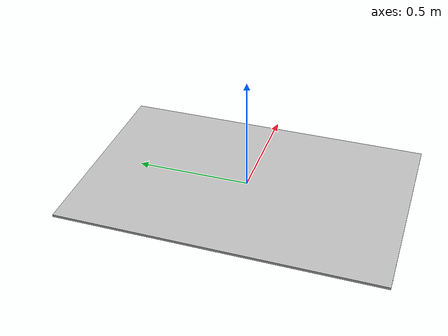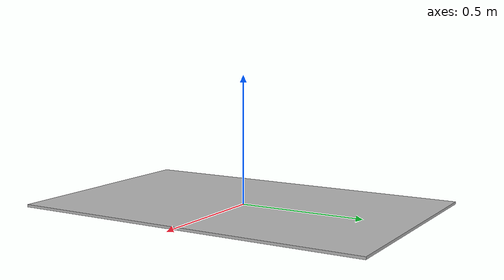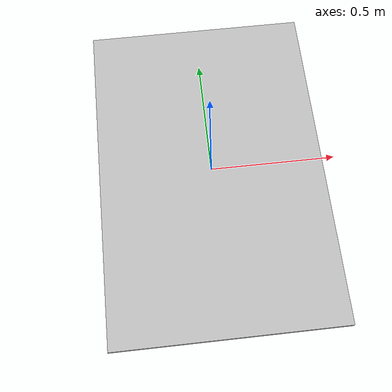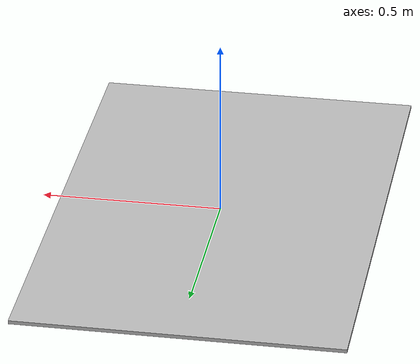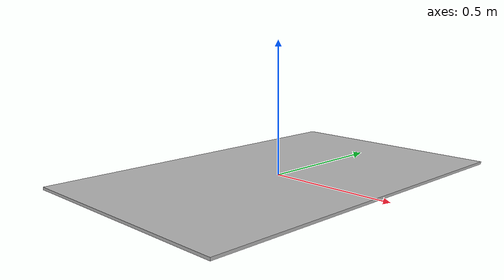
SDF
<?xml version='1.0'?>
<sdf version='1.7'>
  <model name='plate_9'>
    <link name='link_2'>
      <gravity>1</gravity>
      <visual name='visual'>
        <pose>0 0 0 0 -0 0</pose>
        <geometry>
          <box>
            <size>0.9 1.4 0.01</size>
          </box>
        </geometry>
        <material>
          <lighting>1</lighting>
          <script>
            <uri>model://plate_9/materials/scripts</uri>
            <uri>model://plate_9/materials/textures</uri>
            <name>plateby</name>
          </script>
        </material>
        <transparency>0</transparency>
        <cast_shadows>1</cast_shadows>
      </visual>
      <collision name='collision'>
        <geometry>
          <box>
            <size>0.0 0.0 0.0</size>
          </box>
        </geometry>
        <surface>
          <friction>
              <torsional>
                <ode/>
              </torsional>
              <ode/>
           </friction>
        </surface>
      </collision>
    </link>
  </model>
</sdf>
